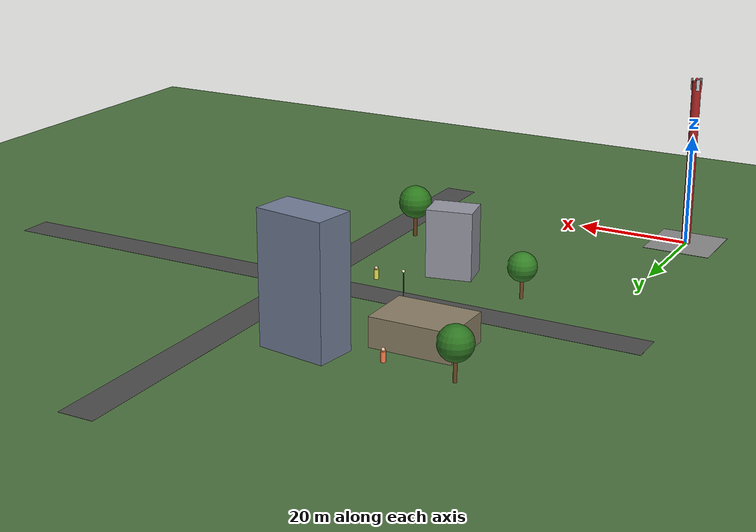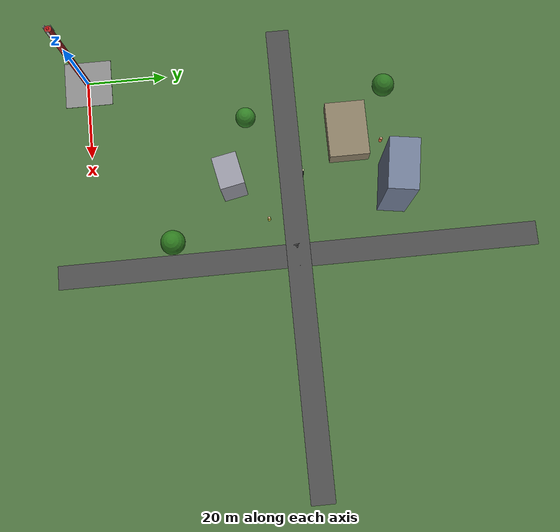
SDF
<sdf version="1.6">
 <world name="vla_6g_demo">
  <model name="ground_plane">
   <static>true</static>
   <link name="link">
    <collision name="collision">
     <geometry><plane><normal>0 0 1</normal><size>200 200</size></plane></geometry>
    </collision>
    <visual name="visual">
     <geometry><plane><normal>0 0 1</normal><size>200 200</size></plane></geometry>
     <material>
      <ambient>0.25 0.4 0.2 1</ambient>
      <diffuse>0.3 0.45 0.25 1</diffuse>
      <specular>0.05 0.05 0.05 1</specular>
     </material>
    </visual>
   </link>
   <pose>50 50 0 0 0 0</pose>
  </model>
  <model name="bs_pad">
   <static>true</static>
   <link name="link">
    <visual name="visual">
     <geometry><box><size>12 12 0.05</size></box></geometry>
     <material><ambient>0.5 0.5 0.5 1</ambient><diffuse>0.55 0.55 0.55 1</diffuse></material>
    </visual>
   </link>
   <pose>0 0 0.025 0 0 0</pose>
  </model>
  <model name="road_x">
   <static>true</static>
   <link name="link">
    <visual name="visual">
     <geometry><box><size>120 6 0.02</size></box></geometry>
     <material><ambient>0.25 0.25 0.25 1</ambient><diffuse>0.3 0.3 0.3 1</diffuse></material>
    </visual>
   </link>
   <pose>50 50 0.01 0 0 0</pose>
  </model>
  <model name="road_y">
   <static>true</static>
   <link name="link">
    <visual name="visual">
     <geometry><box><size>6 120 0.02</size></box></geometry>
     <material><ambient>0.25 0.25 0.25 1</ambient><diffuse>0.3 0.3 0.3 1</diffuse></material>
    </visual>
   </link>
   <pose>50 50 0.01 0 0 0</pose>
  </model>
  <model name="bs_tower">
   <static>true</static>
   <link name="link">
    <visual name="tower_base">
     <geometry><cylinder><radius>0.8</radius><length>30.0</length></cylinder></geometry>
     <material>
      <ambient>0.6 0.1 0.1 1</ambient>
      <diffuse>0.7 0.15 0.15 1</diffuse>
      <specular>0.3 0.3 0.3 1</specular>
     </material>
    </visual>
    <visual name="antenna_panel_1">
     <pose>0.9 0 14.5 0 0 0</pose>
     <geometry><box><size>0.15 0.6 2.0</size></box></geometry>
     <material><ambient>0.7 0.7 0.7 1</ambient><diffuse>0.8 0.8 0.8 1</diffuse></material>
    </visual>
    <visual name="antenna_panel_2">
     <pose>-0.45 0.78 14.5 0 0 2.094</pose>
     <geometry><box><size>0.15 0.6 2.0</size></box></geometry>
     <material><ambient>0.7 0.7 0.7 1</ambient><diffuse>0.8 0.8 0.8 1</diffuse></material>
    </visual>
    <visual name="antenna_panel_3">
     <pose>-0.45 -0.78 14.5 0 0 4.189</pose>
     <geometry><box><size>0.15 0.6 2.0</size></box></geometry>
     <material><ambient>0.7 0.7 0.7 1</ambient><diffuse>0.8 0.8 0.8 1</diffuse></material>
    </visual>
    <visual name="warning_light">
     <pose>0 0 15.3 0 0 0</pose>
     <geometry><sphere><radius>0.3</radius></sphere></geometry>
     <material>
      <ambient>1.0 0.2 0.2 1</ambient>
      <diffuse>1.0 0.1 0.1 1</diffuse>
      <emissive>1.0 0.0 0.0 1</emissive>
     </material>
    </visual>
    <collision name="collision">
     <geometry><cylinder><radius>0.8</radius><length>30.0</length></cylinder></geometry>
    </collision>
   </link>
   <pose>0 0 15 0 0 0</pose>
  </model>
  <model name="building_1">
   <static>true</static>
   <link name="link">
    <visual name="visual">
     <geometry><box><size>8 6 12</size></box></geometry>
     <material>
      <ambient>0.55 0.55 0.6 1</ambient>
      <diffuse>0.6 0.6 0.65 1</diffuse>
      <specular>0.2 0.2 0.2 1</specular>
     </material>
    </visual>
   </link>
   <pose>30 35 6 0 0 0.2</pose>
  </model>
  <model name="building_4">
   <static>true</static>
   <link name="link">
    <visual name="visual">
     <geometry><box><size>12 7 22</size></box></geometry>
     <material>
      <ambient>0.4 0.45 0.55 1</ambient>
      <diffuse>0.45 0.5 0.6 1</diffuse>
      <specular>0.4 0.4 0.4 1</specular>
     </material>
    </visual>
   </link>
   <pose>35 75 11 0 0 -0.15</pose>
  </model>
  <model name="warehouse">
   <static>true</static>
   <link name="link">
    <visual name="visual">
     <geometry><box><size>14 10 5</size></box></geometry>
     <material><ambient>0.5 0.45 0.35 1</ambient><diffuse>0.55 0.5 0.4 1</diffuse></material>
    </visual>
   </link>
   <pose>20 65 2.5 0 0 0</pose>
  </model>
  <model name="user_1">
   <static>true</static>
   <link name="link">
    <visual name="body">
     <geometry><cylinder><radius>0.4</radius><length>1.7</length></cylinder></geometry>
     <material><ambient>0.9 0.4 0.2 1</ambient><diffuse>1.0 0.5 0.3 1</diffuse></material>
    </visual>
    <visual name="head">
     <pose>0 0 1.1 0 0 0</pose>
     <geometry><sphere><radius>0.3</radius></sphere></geometry>
     <material><ambient>0.9 0.75 0.6 1</ambient><diffuse>0.95 0.8 0.65 1</diffuse></material>
    </visual>
   </link>
   <pose>22.4 73.6 0.85 0 0 1.2</pose>
  </model>
  <model name="user_3">
   <static>true</static>
   <link name="link">
    <visual name="body">
     <geometry><cylinder><radius>0.4</radius><length>1.7</length></cylinder></geometry>
     <material><ambient>0.8 0.8 0.2 1</ambient><diffuse>0.9 0.9 0.3 1</diffuse></material>
    </visual>
    <visual name="head">
     <pose>0 0 1.1 0 0 0</pose>
     <geometry><sphere><radius>0.3</radius></sphere></geometry>
     <material><ambient>0.9 0.75 0.6 1</ambient><diffuse>0.95 0.8 0.65 1</diffuse></material>
    </visual>
   </link>
   <pose>40.2 43.5 0.85 0 0 0.8</pose>
  </model>
  <model name="tree_1">
   <static>true</static>
   <link name="link">
    <visual name="trunk">
     <geometry><cylinder><radius>0.3</radius><length>4.0</length></cylinder></geometry>
     <material><ambient>0.4 0.25 0.1 1</ambient><diffuse>0.45 0.3 0.15 1</diffuse></material>
    </visual>
    <visual name="canopy">
     <pose>0 0 3.5 0 0 0</pose>
     <geometry><sphere><radius>2.5</radius></sphere></geometry>
     <material><ambient>0.15 0.4 0.1 1</ambient><diffuse>0.2 0.5 0.15 1</diffuse></material>
    </visual>
   </link>
   <pose>15 40 2.0 0 0 0</pose>
  </model>
  <model name="tree_3">
   <static>true</static>
   <link name="link">
    <visual name="trunk">
     <geometry><cylinder><radius>0.35</radius><length>5.0</length></cylinder></geometry>
     <material><ambient>0.35 0.2 0.1 1</ambient><diffuse>0.4 0.25 0.12 1</diffuse></material>
    </visual>
    <visual name="canopy">
     <pose>0 0 4.0 0 0 0</pose>
     <geometry><sphere><radius>3.0</radius></sphere></geometry>
     <material><ambient>0.12 0.38 0.08 1</ambient><diffuse>0.18 0.48 0.12 1</diffuse></material>
    </visual>
   </link>
   <pose>45 20 2.5 0 0 0</pose>
  </model>
  <model name="tree_5">
   <static>true</static>
   <link name="link">
    <visual name="trunk">
     <geometry><cylinder><radius>0.3</radius><length>4.5</length></cylinder></geometry>
     <material><ambient>0.38 0.22 0.1 1</ambient><diffuse>0.42 0.28 0.14 1</diffuse></material>
    </visual>
    <visual name="canopy">
     <pose>0 0 3.8 0 0 0</pose>
     <geometry><sphere><radius>2.8</radius></sphere></geometry>
     <material><ambient>0.13 0.36 0.09 1</ambient><diffuse>0.18 0.46 0.13 1</diffuse></material>
    </visual>
   </link>
   <pose>10 75 2.25 0 0 0</pose>
  </model>
  <model name="lamp_1">
   <static>true</static>
   <link name="link">
    <visual name="pole">
     <geometry><cylinder><radius>0.08</radius><length>6.0</length></cylinder></geometry>
     <material><ambient>0.3 0.3 0.3 1</ambient><diffuse>0.35 0.35 0.35 1</diffuse></material>
    </visual>
    <visual name="lamp">
     <pose>0 0 3.2 0 0 0</pose>
     <geometry><sphere><radius>0.25</radius></sphere></geometry>
     <material>
      <ambient>0.9 0.9 0.7 1</ambient>
      <diffuse>1.0 1.0 0.8 1</diffuse>
      <emissive>0.8 0.8 0.5 1</emissive>
     </material>
    </visual>
   </link>
   <pose>30 53 3.0 0 0 0</pose>
  </model>
 </world>
</sdf>
